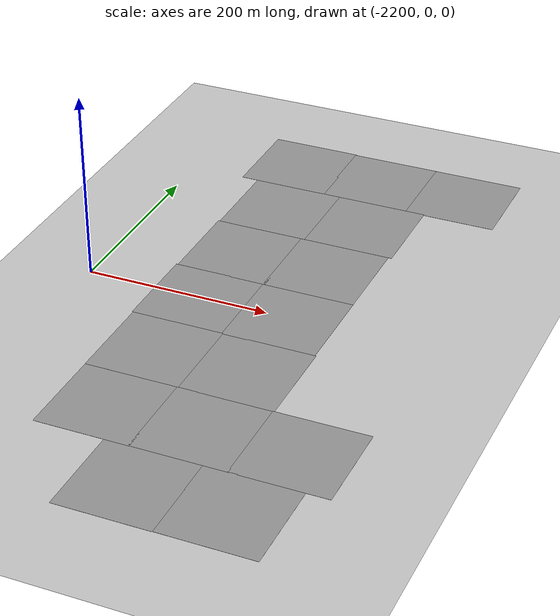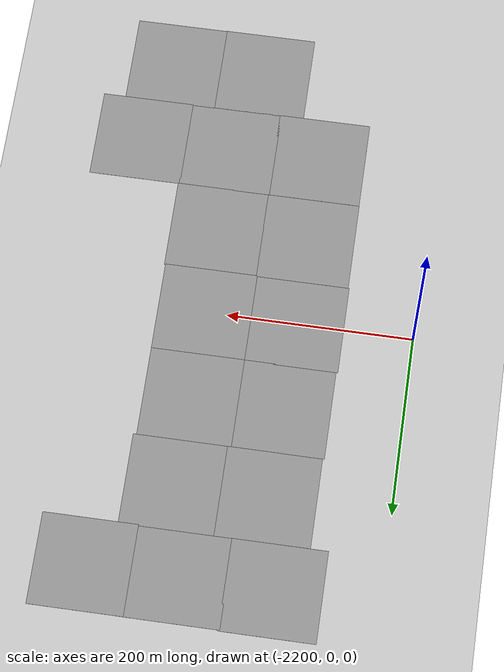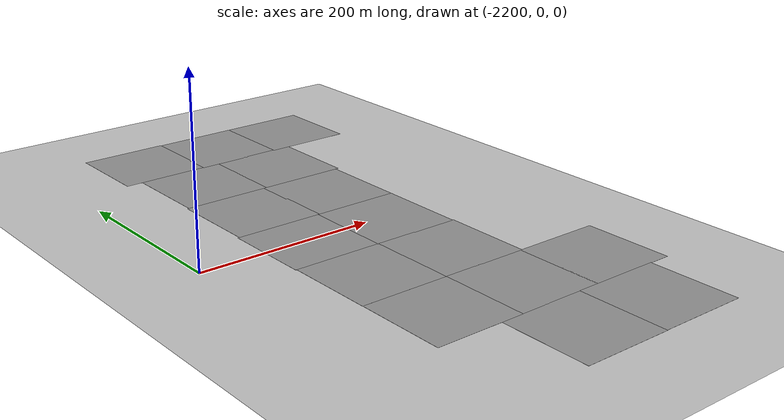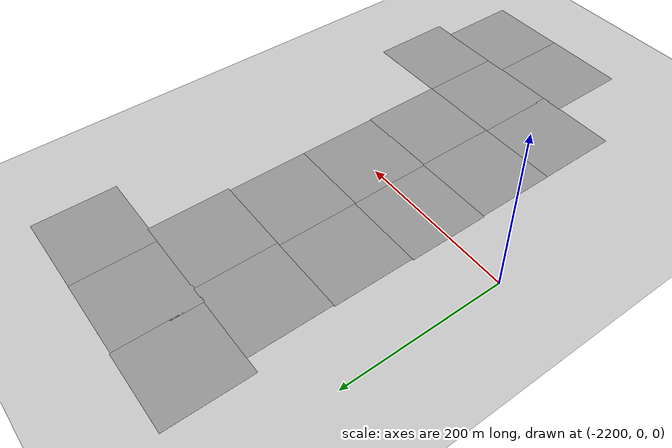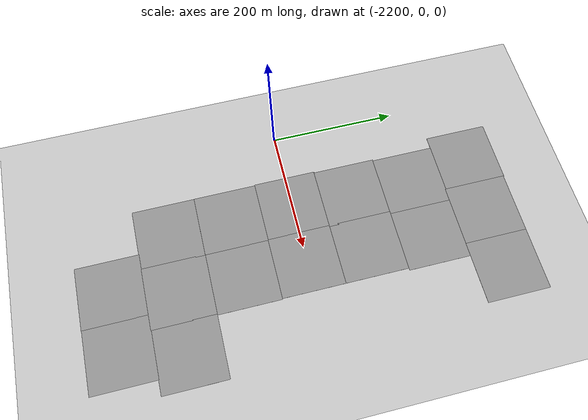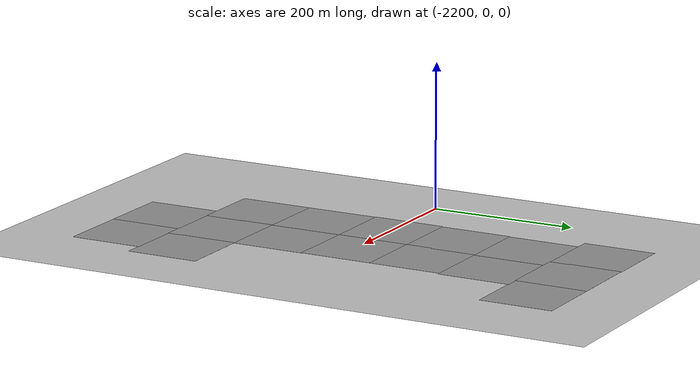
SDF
<sdf version="1.7">
 <world name="default">
  <model name="ground_plane">
   <static>1</static>
   <link name="link">
    <collision name="collision">
     <geometry><plane><normal>0 0 1</normal><size>100 100</size></plane></geometry>
     <surface><friction><ode><mu>100</mu><mu2>50</mu2></ode></friction></surface>
    </collision>
    <visual name="visual">
     <cast_shadows>0</cast_shadows>
     <geometry><plane><normal>0 0 1</normal><size>100 100</size></plane></geometry>
     <material>
      <script><uri>file://media/materials/scripts/gazebo.material</uri><name>Gazebo/Grey</name></script>
     </material>
    </visual>
   </link>
  </model>
  <model name="ground_plane_183">
   <static>1</static>
   <link name="link">
    <collision name="collision">
     <geometry><plane><normal>0 0 1</normal><size>100 100</size></plane></geometry>
     <surface>
      <contact><collide_bitmask>65535</collide_bitmask></contact>
      <friction><ode><mu>100</mu><mu2>50</mu2></ode></friction>
     </surface>
    </collision>
    <visual name="visual">
     <cast_shadows>0</cast_shadows>
     <geometry><plane><normal>0 0 1</normal><size>100 100</size></plane></geometry>
     <material>
      <script><uri>file://media/materials/scripts/gazebo.material</uri><name>Gazebo/Grey</name></script>
     </material>
    </visual>
   </link>
   <pose>-1876.5 -200.187 0 0 -0 0</pose>
  </model>
  <model name="ground_plane_184">
   <static>1</static>
   <link name="link">
    <collision name="collision">
     <geometry><plane><normal>0 0 1</normal><size>100 100</size></plane></geometry>
     <surface>
      <contact><collide_bitmask>65535</collide_bitmask></contact>
      <friction><ode><mu>100</mu><mu2>50</mu2></ode></friction>
     </surface>
    </collision>
    <visual name="visual">
     <cast_shadows>0</cast_shadows>
     <geometry><plane><normal>0 0 1</normal><size>100 100</size></plane></geometry>
     <material>
      <script><uri>file://media/materials/scripts/gazebo.material</uri><name>Gazebo/Grey</name></script>
     </material>
    </visual>
   </link>
   <pose>-1972.37 198.263 0 0 -0 0</pose>
  </model>
  <model name="ground_plane_185">
   <static>1</static>
   <link name="link">
    <collision name="collision">
     <geometry><plane><normal>0 0 1</normal><size>100 100</size></plane></geometry>
     <surface>
      <contact><collide_bitmask>65535</collide_bitmask></contact>
      <friction><ode><mu>100</mu><mu2>50</mu2></ode></friction>
     </surface>
    </collision>
    <visual name="visual">
     <cast_shadows>0</cast_shadows>
     <geometry><plane><normal>0 0 1</normal><size>100 100</size></plane></geometry>
     <material>
      <script><uri>file://media/materials/scripts/gazebo.material</uri><name>Gazebo/Grey</name></script>
     </material>
    </visual>
   </link>
   <pose>-1975.9 98.3292 0 0 -0 0</pose>
  </model>
  <model name="ground_plane_187">
   <static>1</static>
   <link name="link">
    <collision name="collision">
     <geometry><plane><normal>0 0 1</normal><size>100 100</size></plane></geometry>
     <surface>
      <contact><collide_bitmask>65535</collide_bitmask></contact>
      <friction><ode><mu>100</mu><mu2>50</mu2></ode></friction>
     </surface>
    </collision>
    <visual name="visual">
     <cast_shadows>0</cast_shadows>
     <geometry><plane><normal>0 0 1</normal><size>100 100</size></plane></geometry>
     <material>
      <script><uri>file://media/materials/scripts/gazebo.material</uri><name>Gazebo/Grey</name></script>
     </material>
    </visual>
   </link>
   <pose>-1974.66 -100.705 0 0 -0 0</pose>
  </model>
  <model name="ground_plane_186">
   <static>1</static>
   <link name="link">
    <collision name="collision">
     <geometry><plane><normal>0 0 1</normal><size>100 100</size></plane></geometry>
     <surface>
      <contact><collide_bitmask>65535</collide_bitmask></contact>
      <friction><ode><mu>100</mu><mu2>50</mu2></ode></friction>
     </surface>
    </collision>
    <visual name="visual">
     <cast_shadows>0</cast_shadows>
     <geometry><plane><normal>0 0 1</normal><size>100 100</size></plane></geometry>
     <material>
      <script><uri>file://media/materials/scripts/gazebo.material</uri><name>Gazebo/Grey</name></script>
     </material>
    </visual>
   </link>
   <pose>-1975.85 -1.49652 0 0 -0 0</pose>
  </model>
  <model name="ground_plane_188">
   <static>1</static>
   <link name="link">
    <collision name="collision">
     <geometry><plane><normal>0 0 1</normal><size>100 100</size></plane></geometry>
     <surface>
      <contact><collide_bitmask>65535</collide_bitmask></contact>
      <friction><ode><mu>100</mu><mu2>50</mu2></ode></friction>
     </surface>
    </collision>
    <visual name="visual">
     <cast_shadows>0</cast_shadows>
     <geometry><plane><normal>0 0 1</normal><size>100 100</size></plane></geometry>
     <material>
      <script><uri>file://media/materials/scripts/gazebo.material</uri><name>Gazebo/Grey</name></script>
     </material>
    </visual>
   </link>
   <pose>-1975.43 -200.154 0 0 -0 0</pose>
  </model>
  <model name="ground_plane_189">
   <static>1</static>
   <link name="link">
    <collision name="collision">
     <geometry><plane><normal>0 0 1</normal><size>100 100</size></plane></geometry>
     <surface>
      <contact><collide_bitmask>65535</collide_bitmask></contact>
      <friction><ode><mu>100</mu><mu2>50</mu2></ode></friction>
     </surface>
    </collision>
    <visual name="visual">
     <cast_shadows>0</cast_shadows>
     <geometry><plane><normal>0 0 1</normal><size>100 100</size></plane></geometry>
     <material>
      <script><uri>file://media/materials/scripts/gazebo.material</uri><name>Gazebo/Grey</name></script>
     </material>
    </visual>
   </link>
   <pose>-2071.94 198.234 0 0 -0 0</pose>
  </model>
  <model name="ground_plane_190">
   <static>1</static>
   <link name="link">
    <collision name="collision">
     <geometry><plane><normal>0 0 1</normal><size>100 100</size></plane></geometry>
     <surface>
      <contact><collide_bitmask>65535</collide_bitmask></contact>
      <friction><ode><mu>100</mu><mu2>50</mu2></ode></friction>
     </surface>
    </collision>
    <visual name="visual">
     <cast_shadows>0</cast_shadows>
     <geometry><plane><normal>0 0 1</normal><size>100 100</size></plane></geometry>
     <material>
      <script><uri>file://media/materials/scripts/gazebo.material</uri><name>Gazebo/Grey</name></script>
     </material>
    </visual>
   </link>
   <pose>-2073.72 98.4453 0 0 -0 0</pose>
  </model>
  <model name="ground_plane_191">
   <static>1</static>
   <link name="link">
    <collision name="collision">
     <geometry><plane><normal>0 0 1</normal><size>100 100</size></plane></geometry>
     <surface>
      <contact><collide_bitmask>65535</collide_bitmask></contact>
      <friction><ode><mu>100</mu><mu2>50</mu2></ode></friction>
     </surface>
    </collision>
    <visual name="visual">
     <cast_shadows>0</cast_shadows>
     <geometry><plane><normal>0 0 1</normal><size>100 100</size></plane></geometry>
     <material>
      <script><uri>file://media/materials/scripts/gazebo.material</uri><name>Gazebo/Grey</name></script>
     </material>
    </visual>
   </link>
   <pose>-2075.5 -0.632189 0 0 -0 0</pose>
  </model>
  <model name="ground_plane_192">
   <static>1</static>
   <link name="link">
    <collision name="collision">
     <geometry><plane><normal>0 0 1</normal><size>100 100</size></plane></geometry>
     <surface>
      <contact><collide_bitmask>65535</collide_bitmask></contact>
      <friction><ode><mu>100</mu><mu2>50</mu2></ode></friction>
     </surface>
    </collision>
    <visual name="visual">
     <cast_shadows>0</cast_shadows>
     <geometry><plane><normal>0 0 1</normal><size>100 100</size></plane></geometry>
     <material>
      <script><uri>file://media/materials/scripts/gazebo.material</uri><name>Gazebo/Grey</name></script>
     </material>
    </visual>
   </link>
   <pose>-2074.31 -100.441 0 0 -0 0</pose>
  </model>
  <model name="ground_plane_193">
   <static>1</static>
   <link name="link">
    <collision name="collision">
     <geometry><plane><normal>0 0 1</normal><size>100 100</size></plane></geometry>
     <surface>
      <contact><collide_bitmask>65535</collide_bitmask></contact>
      <friction><ode><mu>100</mu><mu2>50</mu2></ode></friction>
     </surface>
    </collision>
    <visual name="visual">
     <cast_shadows>0</cast_shadows>
     <geometry><plane><normal>0 0 1</normal><size>100 100</size></plane></geometry>
     <material>
      <script><uri>file://media/materials/scripts/gazebo.material</uri><name>Gazebo/Grey</name></script>
     </material>
    </visual>
   </link>
   <pose>-2074.09 -200.45 0 0 -0 0</pose>
  </model>
  <model name="ground_plane_235">
   <static>1</static>
   <link name="link">
    <collision name="collision">
     <geometry><plane><normal>0 0 1</normal><size>100 100</size></plane></geometry>
     <surface>
      <contact><collide_bitmask>65535</collide_bitmask></contact>
      <friction><ode><mu>100</mu><mu2>50</mu2></ode></friction>
     </surface>
    </collision>
    <visual name="visual">
     <cast_shadows>0</cast_shadows>
     <geometry><plane><normal>0 0 1</normal><size>100 100</size></plane></geometry>
     <material>
      <script><uri>file://media/materials/scripts/gazebo.material</uri><name>Gazebo/Grey</name></script>
     </material>
    </visual>
   </link>
   <pose>-1900.54 -299.314 0 0 -0 0</pose>
  </model>
  <model name="ground_plane_236">
   <static>1</static>
   <link name="link">
    <collision name="collision">
     <geometry><plane><normal>0 0 1</normal><size>100 100</size></plane></geometry>
     <surface>
      <contact><collide_bitmask>65535</collide_bitmask></contact>
      <friction><ode><mu>100</mu><mu2>50</mu2></ode></friction>
     </surface>
    </collision>
    <visual name="visual">
     <cast_shadows>0</cast_shadows>
     <geometry><plane><normal>0 0 1</normal><size>100 100</size></plane></geometry>
     <material>
      <script><uri>file://media/materials/scripts/gazebo.material</uri><name>Gazebo/Grey</name></script>
     </material>
    </visual>
   </link>
   <pose>-2000.11 -299.685 0 0 -0 0</pose>
  </model>
  <model name="ground_plane_275">
   <static>1</static>
   <link name="link">
    <collision name="collision">
     <geometry><plane><normal>0 0 1</normal><size>100 100</size></plane></geometry>
     <surface>
      <contact><collide_bitmask>65535</collide_bitmask></contact>
      <friction><ode><mu>100</mu><mu2>50</mu2></ode></friction>
     </surface>
    </collision>
    <visual name="visual">
     <cast_shadows>0</cast_shadows>
     <geometry><plane><normal>0 0 1</normal><size>100 100</size></plane></geometry>
     <material>
      <script><uri>file://media/materials/scripts/gazebo.material</uri><name>Gazebo/Grey</name></script>
     </material>
    </visual>
   </link>
   <pose>-1893.72 296.809 0 0 -0 0</pose>
  </model>
  <model name="ground_plane_276">
   <static>1</static>
   <link name="link">
    <collision name="collision">
     <geometry><plane><normal>0 0 1</normal><size>100 100</size></plane></geometry>
     <surface>
      <contact><collide_bitmask>65535</collide_bitmask></contact>
      <friction><ode><mu>100</mu><mu2>50</mu2></ode></friction>
     </surface>
    </collision>
    <visual name="visual">
     <cast_shadows>0</cast_shadows>
     <geometry><plane><normal>0 0 1</normal><size>100 100</size></plane></geometry>
     <material>
      <script><uri>file://media/materials/scripts/gazebo.material</uri><name>Gazebo/Grey</name></script>
     </material>
    </visual>
   </link>
   <pose>-1992.31 296.934 0 0 -0 0</pose>
  </model>
  <model name="ground_plane_277">
   <static>1</static>
   <link name="link">
    <collision name="collision">
     <geometry><plane><normal>0 0 1</normal><size>100 100</size></plane></geometry>
     <surface>
      <contact><collide_bitmask>65535</collide_bitmask></contact>
      <friction><ode><mu>100</mu><mu2>50</mu2></ode></friction>
     </surface>
    </collision>
    <visual name="visual">
     <cast_shadows>0</cast_shadows>
     <geometry><plane><normal>0 0 1</normal><size>100 100</size></plane></geometry>
     <material>
      <script><uri>file://media/materials/scripts/gazebo.material</uri><name>Gazebo/Grey</name></script>
     </material>
    </visual>
   </link>
   <pose>-2090.66 297.951 0 0 -0 0</pose>
  </model>
 </world>
</sdf>
